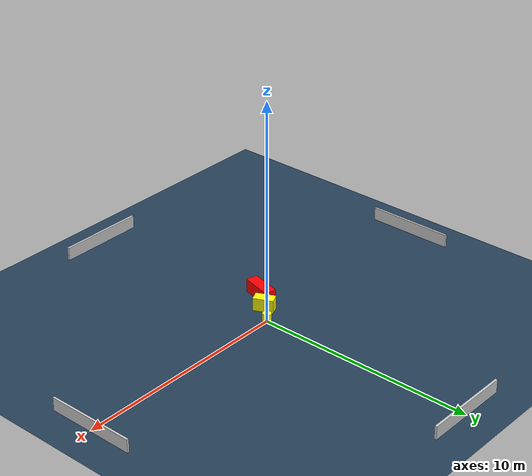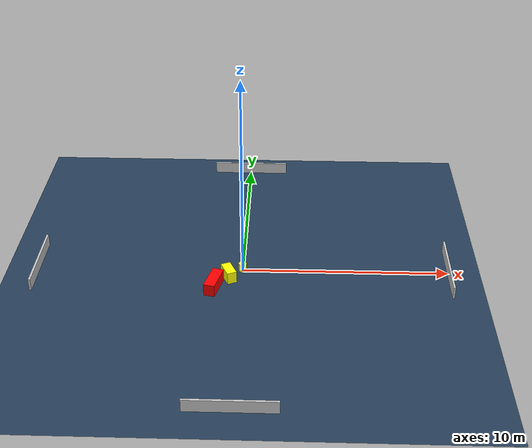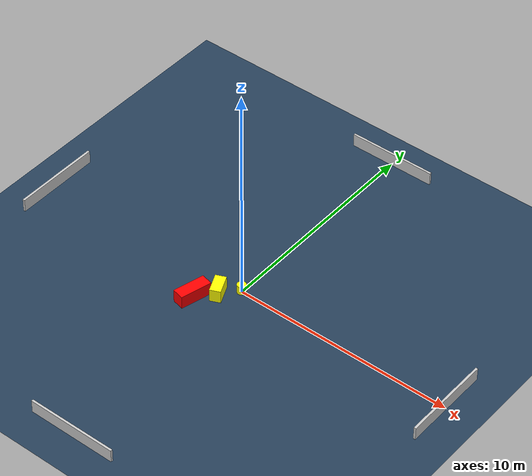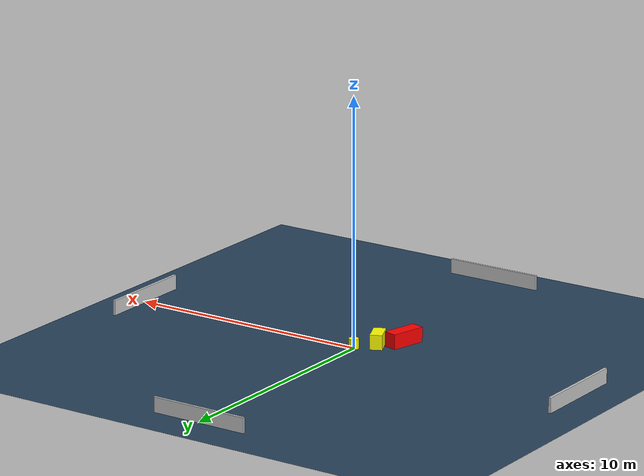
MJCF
<?xml version="1.0" ?>
<mujoco model="generated_environment">
  <option timestep="0.01" integrator="RK4" cone="elliptic"/>
  <default>
    <geom density="1"/>
  </default>
  <asset>
    <texture builtin="gradient" height="3072" name="skybox" rgb1="0.3 0.5 0.7" rgb2="0 0 0" type="skybox" width="512"/>
    <texture builtin="checker" height="300" name="groundplane" rgb1="0.2 0.3 0.4" rgb2="0.1 0.2 0.3" type="2d" width="300"/>
    <material name="groundplane" reflectance="0.2" texrepeat="5 5" texture="groundplane"/>
  </asset>
  <worldbody>
    <light dir="0 0 -1" directional="true" pos="0 0 1.5"/>
    <geom condim="3" friction="0.5 0.005 0.001" material="groundplane" name="floor" pos="0 0 0" size="0 0 0.05" type="plane"/>
    <body name="walls">
      <geom name="wall_1" condim="4" pos="-10.0 0.0 0.3" rgba="0.800000011920929 0.800000011920929 0.800000011920929 1.0" size="0.05 2.0 0.3" type="box"/>
      <geom name="wall_2" condim="4" pos="10.0 0.0 0.3" rgba="0.800000011920929 0.800000011920929 0.800000011920929 1.0" size="0.05 2.0 0.3" type="box"/>
      <geom name="wall_3" condim="4" pos="0.0 -10.0 0.3" rgba="0.800000011920929 0.800000011920929 0.800000011920929 1.0" size="2.0 0.05 0.3" type="box"/>
      <geom name="wall_4" condim="4" pos="0.0 10.0 0.3" rgba="0.800000011920929 0.800000011920929 0.800000011920929 1.0" size="2.0 0.05 0.3" type="box"/>
    </body>
    <body name="robot">
      <joint name="joint_x" type="slide" pos="0 0 0" axis="1 0 0"/>
      <joint name="joint_y" type="slide" pos="0 0 0" axis="0 1 0"/>
      <geom name="robot" type="cylinder" pos="0.0 0.0 0.2" size="0.2 0.2 0.0" mass="5.0" friction="1.0 0.005 0.0001" condim="4" rgba="1.0 1.0 0.0 1.0"/>
    </body>
    <body name="obstacle_1_movable">
      <geom name="obstacle_1_movable" condim="4" pos="-0.6384386901431021 -0.7035741894667888 0.3" euler="0 0 114.21818521744201" friction="0.0 0.005 0.001" rgba="1.0 1.0 0.0 1.0" size="0.45223362233025527 0.2398474698974538 0.3" type="box" mass="0.1"/>
      <joint type="free"/>
    </body>
    <body name="obstacle_2_static">
      <geom name="obstacle_2_static" condim="4" pos="-1.3094699673923234 -1.486181349796015 0.3" euler="0 0 345.5774957816936" friction="0.0 0.005 0.001" rgba="1.0 0.0 0.0 1.0" size="0.26957658853185373 0.7173286580912621 0.3" type="box"/>
    </body>
  </worldbody>
  <actuator>
    <motor name="actuator_x" joint="joint_x" gear="1" ctrlrange="-1 1"/>
    <motor name="actuator_y" joint="joint_y" gear="1" ctrlrange="-1 1"/>
  </actuator>
</mujoco>
